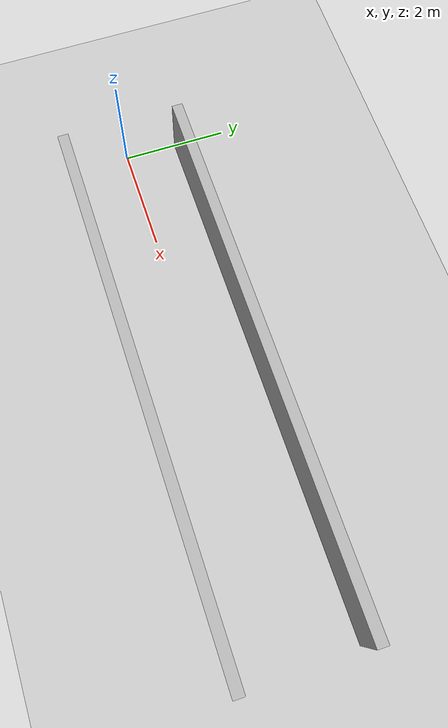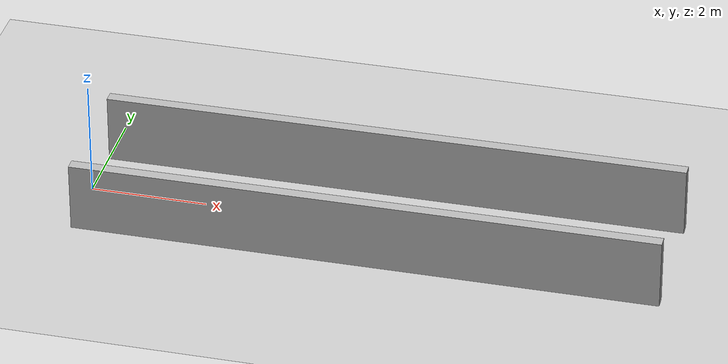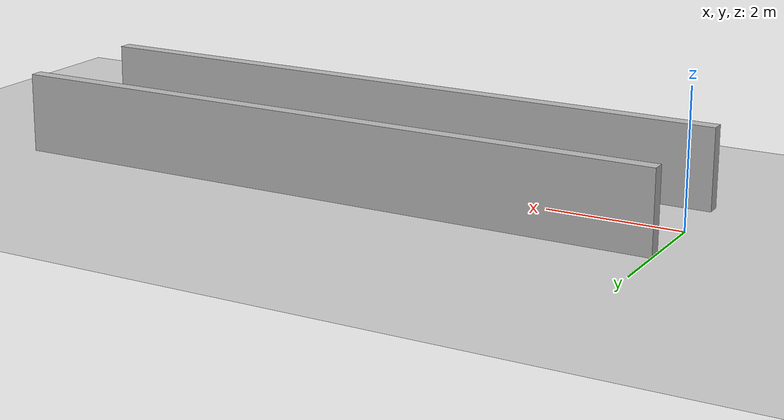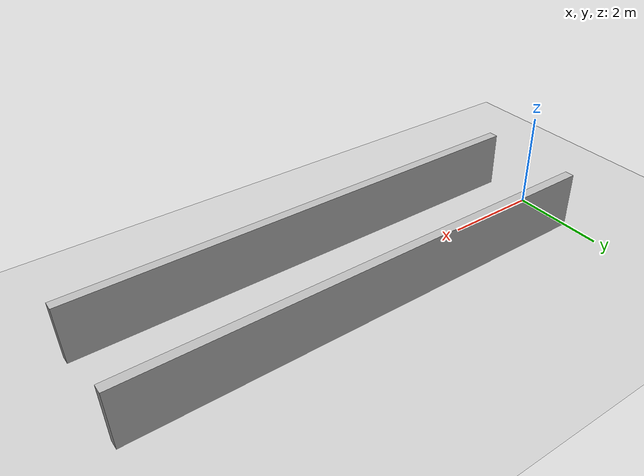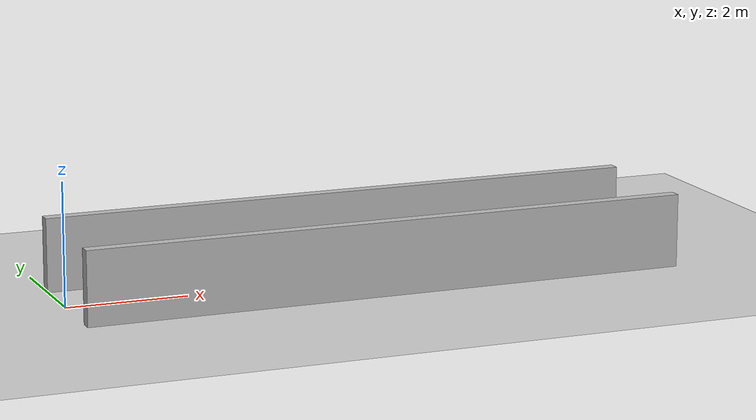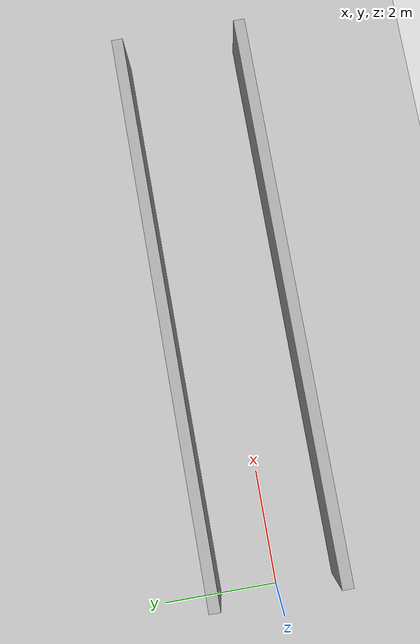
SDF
<?xml version="1.0"?>
<sdf version="1.6">
  <world name="v2-04g-r1-corridor-s4930">
    <gravity>0 0 -9.81</gravity>
    <physics name="v2_deterministic" type="ode">
      <max_step_size>0.002</max_step_size>
      <real_time_update_rate>500</real_time_update_rate>
    </physics>
    <include>
      <uri>model://sun</uri>
    </include>
    <include>
      <uri>model://ground_plane</uri>
    </include>
    <model name="corridor-left">
      <static>true</static>
      <pose>5.001329837 1.104850082 0.600000000 0 0 0.002824571</pose>
      <link name="link">
        <collision name="collision">
          <geometry>
            <box>
              <size>10.000000 0.200000 1.200000</size>
            </box>
          </geometry>
        </collision>
        <visual name="visual">
          <geometry>
            <box>
              <size>10.000000 0.200000 1.200000</size>
            </box>
          </geometry>
        </visual>
      </link>
    </model>
    <model name="corridor-right">
      <static>true</static>
      <pose>4.993368614 -1.105739668 0.600000000 0 0 0.001911838</pose>
      <link name="link">
        <collision name="collision">
          <geometry>
            <box>
              <size>10.000000 0.200000 1.200000</size>
            </box>
          </geometry>
        </collision>
        <visual name="visual">
          <geometry>
            <box>
              <size>10.000000 0.200000 1.200000</size>
            </box>
          </geometry>
        </visual>
      </link>
    </model>
  </world>
</sdf>
